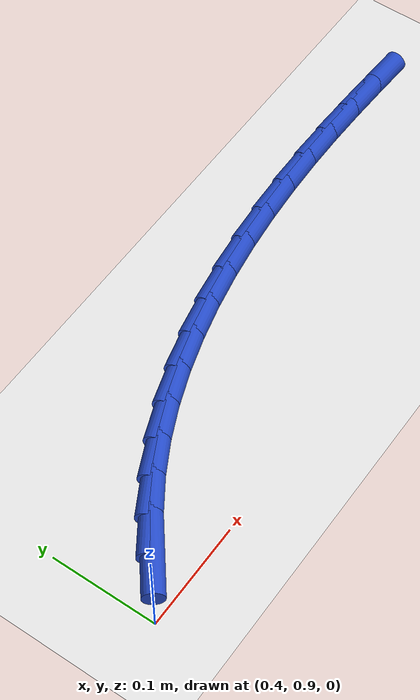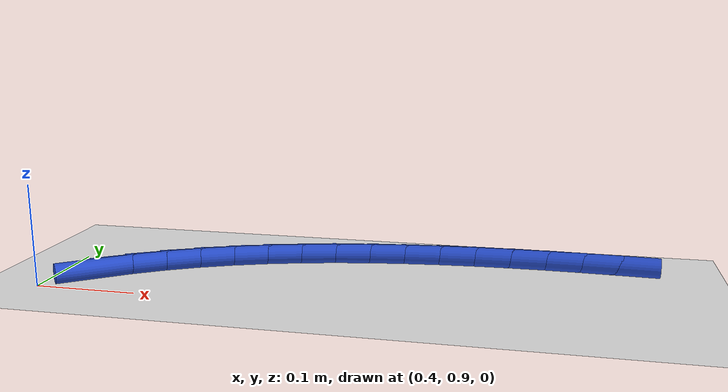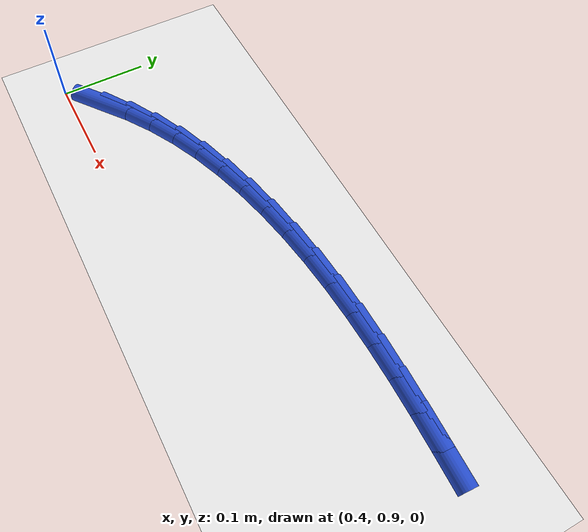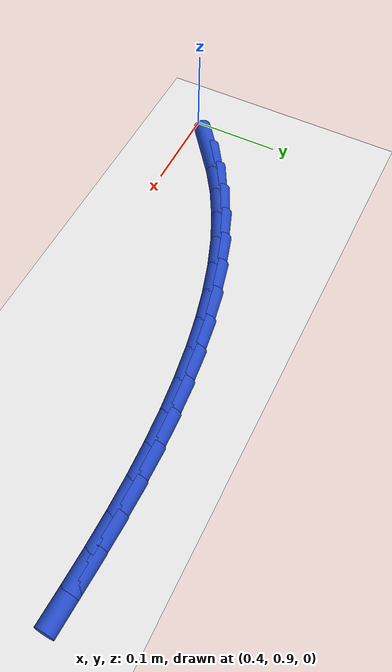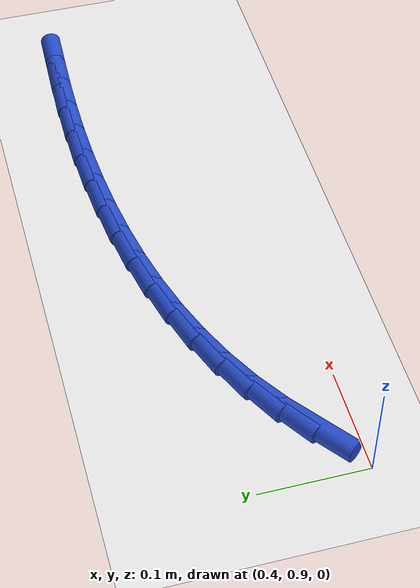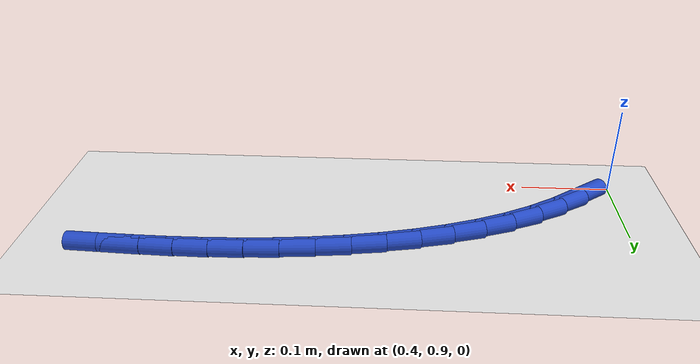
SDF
<sdf version="1.6">
 <world name="default">
  <model name="ground_plane">
   <static>1</static>
   <link name="link">
    <collision name="collision">
     <geometry><plane><normal>0 0 1</normal><size>100 100</size></plane></geometry>
     <surface><friction><ode><mu>100</mu><mu2>50</mu2></ode></friction></surface>
    </collision>
    <visual name="visual">
     <cast_shadows>0</cast_shadows>
     <geometry><plane><normal>0 0 1</normal><size>100 100</size></plane></geometry>
     <material>
      <script><uri>file://media/materials/scripts/gazebo.material</uri><name>Gazebo/WhiteGlow</name></script>
     </material>
    </visual>
   </link>
  </model>
  <model name="line">
   <link name="link_30">
    <pose>0.444334173328022 0.9353363919674778 0.01 0 1.57 0.660918773126957</pose>
    <collision name="collision">
     <geometry><cylinder><radius>0.01</radius><length>0.08</length></cylinder></geometry>
    </collision>
    <visual name="visual">
     <material>
      <script><name>Gazebo/Blue</name><uri>file://media/materials/scripts/gazebo.material</uri></script>
     </material>
     <geometry><cylinder><radius>0.01</radius><length>0.08</length></cylinder></geometry>
    </visual>
   </link>
   <link name="link_31">
    <pose>0.4715288050408617 0.9564823433747088 0.01 0 1.57 0.5801661426976136</pose>
    <collision name="collision">
     <geometry><cylinder><radius>0.01</radius><length>0.08</length></cylinder></geometry>
    </collision>
    <visual name="visual">
     <material>
      <script><name>Gazebo/Blue</name><uri>file://media/materials/scripts/gazebo.material</uri></script>
     </material>
     <geometry><cylinder><radius>0.01</radius><length>0.08</length></cylinder></geometry>
    </visual>
   </link>
   <link name="link_32">
    <pose>0.5003129685951782 0.9753476549547179 0.01 0 1.57 0.49927126204519856</pose>
    <collision name="collision">
     <geometry><cylinder><radius>0.01</radius><length>0.08</length></cylinder></geometry>
    </collision>
    <visual name="visual">
     <material>
      <script><name>Gazebo/Blue</name><uri>file://media/materials/scripts/gazebo.material</uri></script>
     </material>
     <geometry><cylinder><radius>0.01</radius><length>0.08</length></cylinder></geometry>
    </visual>
   </link>
   <link name="link_33">
    <pose>0.5306509160144802 0.9918926559949465 0.01 0 1.57 0.4248155415951112</pose>
    <collision name="collision">
     <geometry><cylinder><radius>0.01</radius><length>0.08</length></cylinder></geometry>
    </collision>
    <visual name="visual">
     <material>
      <script><name>Gazebo/Blue</name><uri>file://media/materials/scripts/gazebo.material</uri></script>
     </material>
     <geometry><cylinder><radius>0.01</radius><length>0.08</length></cylinder></geometry>
    </visual>
   </link>
   <link name="link_34">
    <pose>0.5623663242166497 1.0062394675343898 0.01 0 1.57 0.3569700147139003</pose>
    <collision name="collision">
     <geometry><cylinder><radius>0.01</radius><length>0.08</length></cylinder></geometry>
    </collision>
    <visual name="visual">
     <material>
      <script><name>Gazebo/Blue</name><uri>file://media/materials/scripts/gazebo.material</uri></script>
     </material>
     <geometry><cylinder><radius>0.01</radius><length>0.08</length></cylinder></geometry>
    </visual>
   </link>
   <link name="link_35">
    <pose>0.5952793260055935 1.0185142896301944 0.01 0 1.57 0.2955025873966272</pose>
    <collision name="collision">
     <geometry><cylinder><radius>0.01</radius><length>0.08</length></cylinder></geometry>
    </collision>
    <visual name="visual">
     <material>
      <script><name>Gazebo/Blue</name><uri>file://media/materials/scripts/gazebo.material</uri></script>
     </material>
     <geometry><cylinder><radius>0.01</radius><length>0.08</length></cylinder></geometry>
    </visual>
   </link>
   <link name="link_36">
    <pose>0.6292100541852201 1.0288433223395073 0.01 0 1.57 0.24002684648910314</pose>
    <collision name="collision">
     <geometry><cylinder><radius>0.01</radius><length>0.08</length></cylinder></geometry>
    </collision>
    <visual name="visual">
     <material>
      <script><name>Gazebo/Blue</name><uri>file://media/materials/scripts/gazebo.material</uri></script>
     </material>
     <geometry><cylinder><radius>0.01</radius><length>0.08</length></cylinder></geometry>
    </visual>
   </link>
   <link name="link_37">
    <pose>0.6639786415594363 1.037352765719475 0.01 0 1.57 0.19007676412731167</pose>
    <collision name="collision">
     <geometry><cylinder><radius>0.01</radius><length>0.08</length></cylinder></geometry>
    </collision>
    <visual name="visual">
     <material>
      <script><name>Gazebo/Blue</name><uri>file://media/materials/scripts/gazebo.material</uri></script>
     </material>
     <geometry><cylinder><radius>0.01</radius><length>0.08</length></cylinder></geometry>
    </visual>
   </link>
   <link name="link_38">
    <pose>0.6994052209321502 1.0441688198272443 0.01 0 1.57 0.14516052504687696</pose>
    <collision name="collision">
     <geometry><cylinder><radius>0.01</radius><length>0.08</length></cylinder></geometry>
    </collision>
    <visual name="visual">
     <material>
      <script><name>Gazebo/Blue</name><uri>file://media/materials/scripts/gazebo.material</uri></script>
     </material>
     <geometry><cylinder><radius>0.01</radius><length>0.08</length></cylinder></geometry>
    </visual>
   </link>
   <link name="link_39">
    <pose>0.735309925107269 1.049417684719962 0.01 0 1.57 0.10479600865793186</pose>
    <collision name="collision">
     <geometry><cylinder><radius>0.01</radius><length>0.08</length></cylinder></geometry>
    </collision>
    <visual name="visual">
     <material>
      <script><name>Gazebo/Blue</name><uri>file://media/materials/scripts/gazebo.material</uri></script>
     </material>
     <geometry><cylinder><radius>0.01</radius><length>0.08</length></cylinder></geometry>
    </visual>
   </link>
   <link name="link_40">
    <pose>0.7715128868887005 1.0532255604547751 0.01 0 1.57 0.06853220484784232</pose>
    <collision name="collision">
     <geometry><cylinder><radius>0.01</radius><length>0.08</length></cylinder></geometry>
    </collision>
    <visual name="visual">
     <material>
      <script><name>Gazebo/Blue</name><uri>file://media/materials/scripts/gazebo.material</uri></script>
     </material>
     <geometry><cylinder><radius>0.01</radius><length>0.08</length></cylinder></geometry>
    </visual>
   </link>
   <link name="link_41">
    <pose>0.8078342390803522 1.0557186470888298 0.01 0 1.57 0.03596083025836046</pose>
    <collision name="collision">
     <geometry><cylinder><radius>0.01</radius><length>0.08</length></cylinder></geometry>
    </collision>
    <visual name="visual">
     <material>
      <script><name>Gazebo/Blue</name><uri>file://media/materials/scripts/gazebo.material</uri></script>
     </material>
     <geometry><cylinder><radius>0.01</radius><length>0.08</length></cylinder></geometry>
    </visual>
   </link>
   <link name="link_42">
    <pose>0.8440941144861316 1.057023144679273 0.01 0 1.57 0.006721677652159711</pose>
    <collision name="collision">
     <geometry><cylinder><radius>0.01</radius><length>0.08</length></cylinder></geometry>
    </collision>
    <visual name="visual">
     <material>
      <script><name>Gazebo/Blue</name><uri>file://media/materials/scripts/gazebo.material</uri></script>
     </material>
     <geometry><cylinder><radius>0.01</radius><length>0.08</length></cylinder></geometry>
    </visual>
   </link>
   <link name="link_43">
    <pose>0.8801126459099462 1.0572652532832514 0.01 0 1.57 -0.01923687257203054</pose>
    <collision name="collision">
     <geometry><cylinder><radius>0.01</radius><length>0.08</length></cylinder></geometry>
    </collision>
    <visual name="visual">
     <material>
      <script><name>Gazebo/Blue</name><uri>file://media/materials/scripts/gazebo.material</uri></script>
     </material>
     <geometry><cylinder><radius>0.01</radius><length>0.08</length></cylinder></geometry>
    </visual>
   </link>
   <link name="link_44">
    <pose>0.9157230908402902 1.0565801351788304 0.01 0 1.57 -0.038300130499265984</pose>
    <collision name="collision">
     <geometry><cylinder><radius>0.01</radius><length>0.08</length></cylinder></geometry>
    </collision>
    <visual name="visual">
     <material>
      <script><name>Gazebo/Blue</name><uri>file://media/materials/scripts/gazebo.material</uri></script>
     </material>
     <geometry><cylinder><radius>0.01</radius><length>0.08</length></cylinder></geometry>
    </visual>
   </link>
   <link name="link_45">
    <pose>0.9509454271535249 1.0552304550884237 0.01 0 1.57 -0.047308073980665534</pose>
    <collision name="collision">
     <geometry><cylinder><radius>0.01</radius><length>0.08</length></cylinder></geometry>
    </collision>
    <visual name="visual">
     <material>
      <script><name>Gazebo/Blue</name><uri>file://media/materials/scripts/gazebo.material</uri></script>
     </material>
     <geometry><cylinder><radius>0.01</radius><length>0.08</length></cylinder></geometry>
    </visual>
   </link>
  </model>
 </world>
</sdf>
